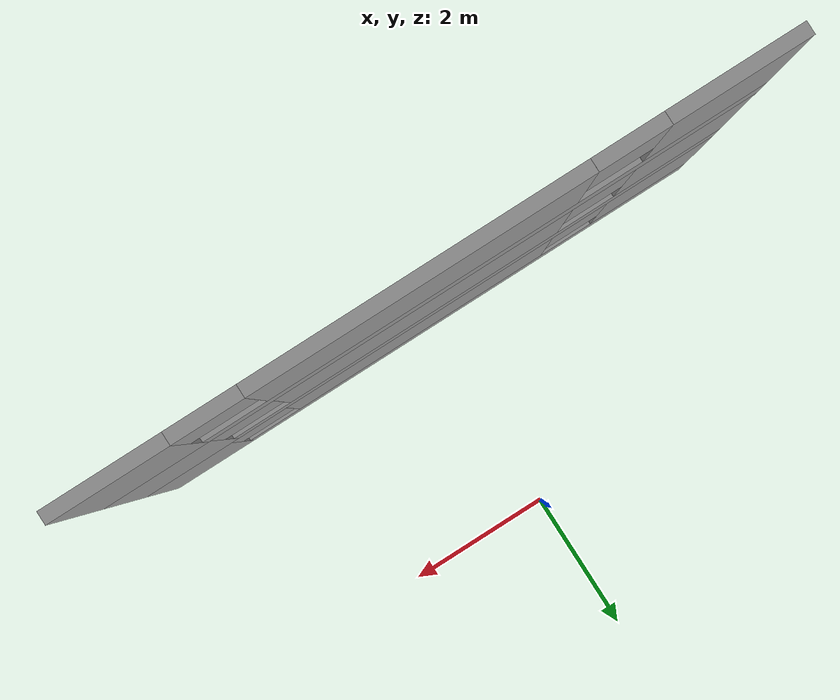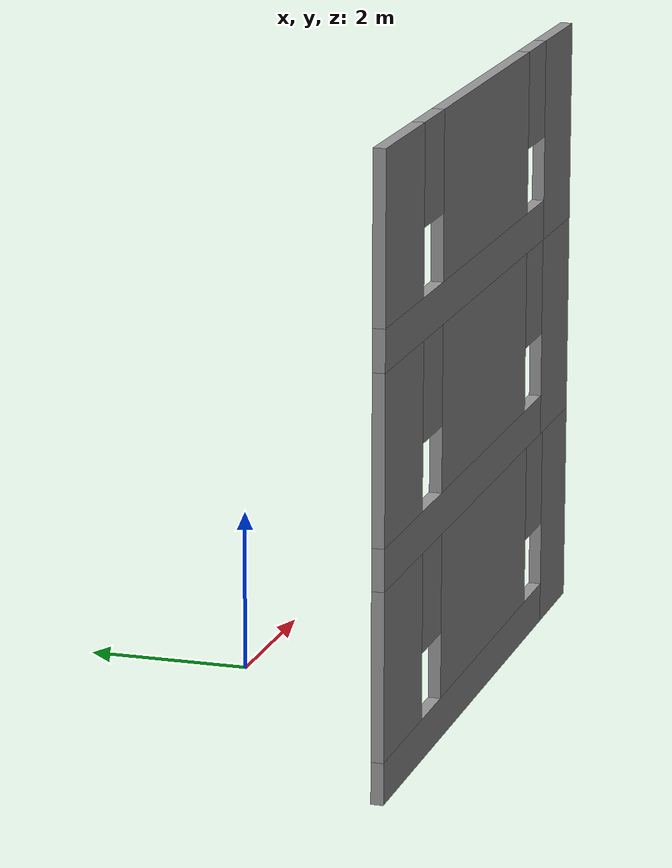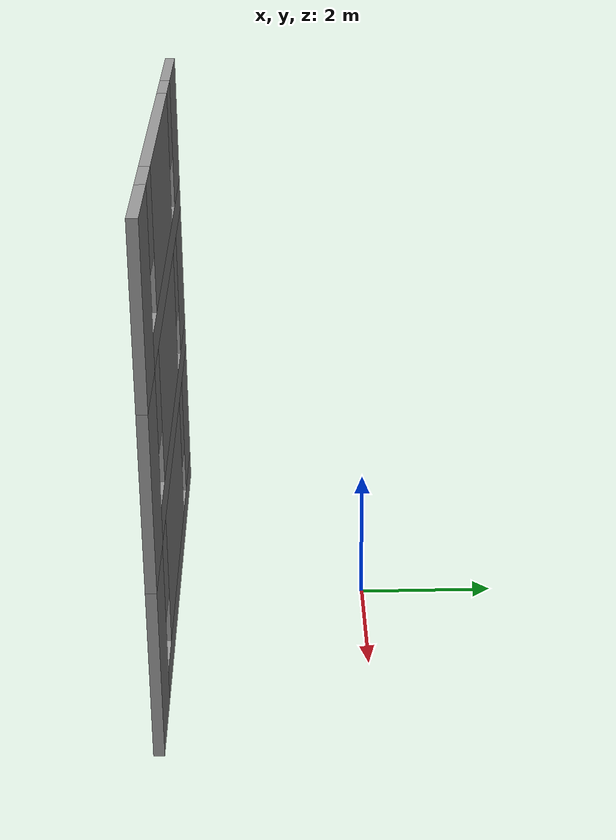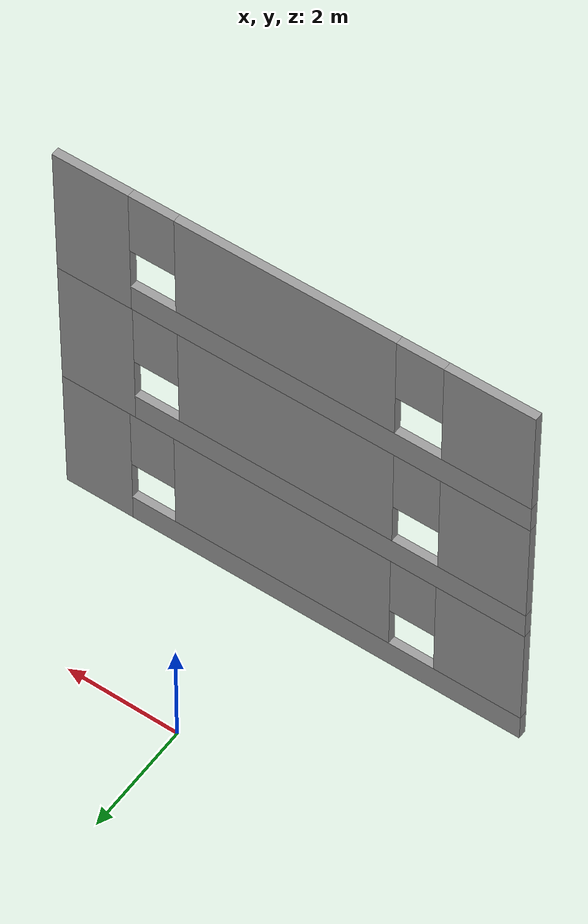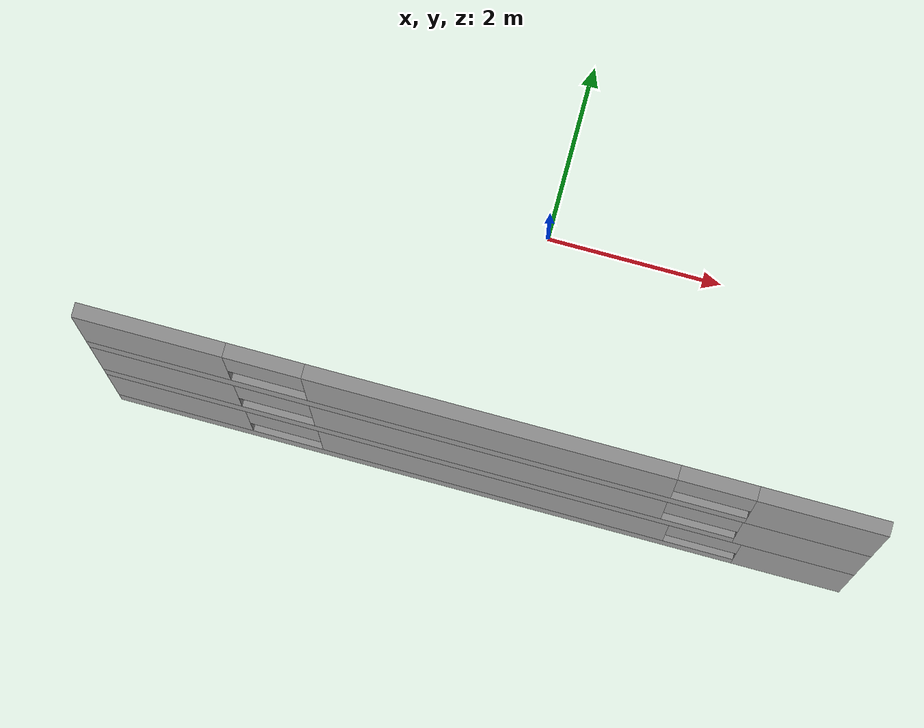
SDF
<sdf version="1.7">
 <model name="simple_building">
  <link name="Wall_20">
   <pose>0.008172 -2.91354 2.5 0 -0 3.14159</pose>
   <visual name="Wall_20_Visual_0">
    <pose>-3.46119 0 1.25 0 -0 0</pose>
    <geometry><box><size>1.35138 0.15 2.5</size></box></geometry>
    <material>
     <script><uri>file://media/materials/scripts/gazebo.material</uri><name>Gazebo/Grey</name></script>
     <ambient>1 1 1 1</ambient>
     <shader type="pixel"/>
    </material>
   </visual>
   <visual name="Wall_20_Visual_1">
    <pose>0.675691 0 0.25 0 -0 0</pose>
    <geometry><box><size>6.92237 0.15 0.5</size></box></geometry>
    <material>
     <script><uri>file://media/materials/scripts/gazebo.material</uri><name>Gazebo/Grey</name></script>
     <ambient>1 1 1 1</ambient>
     <shader type="pixel"/>
    </material>
   </visual>
   <visual name="Wall_20_Visual_2">
    <pose>-0.088975 0 1.5 0 -0 0</pose>
    <geometry><box><size>3.79304 0.15 2</size></box></geometry>
    <material>
     <script><uri>file://media/materials/scripts/gazebo.material</uri><name>Gazebo/Grey</name></script>
     <ambient>1 1 1 1</ambient>
     <shader type="pixel"/>
    </material>
   </visual>
   <visual name="Wall_20_Visual_3">
    <pose>3.37221 0 1.5 0 -0 0</pose>
    <geometry><box><size>1.52933 0.15 2</size></box></geometry>
    <material>
     <script><uri>file://media/materials/scripts/gazebo.material</uri><name>Gazebo/Grey</name></script>
     <ambient>1 1 1 1</ambient>
     <shader type="pixel"/>
    </material>
   </visual>
   <visual name="Wall_20_Visual_4">
    <pose>-2.3855 0 1.9 0 -0 0</pose>
    <geometry><box><size>0.8 0.15 1.2</size></box></geometry>
    <material>
     <script><uri>file://media/materials/scripts/gazebo.material</uri><name>Gazebo/Grey</name></script>
     <ambient>1 1 1 1</ambient>
     <shader type="pixel"/>
    </material>
   </visual>
   <visual name="Wall_20_Visual_5">
    <pose>2.20755 0 1.9 0 -0 0</pose>
    <geometry><box><size>0.8 0.15 1.2</size></box></geometry>
    <material>
     <script><uri>file://media/materials/scripts/gazebo.material</uri><name>Gazebo/Grey</name></script>
     <ambient>1 1 1 1</ambient>
     <shader type="pixel"/>
    </material>
   </visual>
   <collision name="Wall_20_Collision_0">
    <pose>-3.46119 0 1.25 0 -0 0</pose>
    <geometry><box><size>1.35138 0.15 2.5</size></box></geometry>
    <surface>
     <friction>
      <ode><mu>1</mu><mu2>1</mu2><fdir1>0 0 0</fdir1><slip1>0</slip1><slip2>0</slip2></ode>
      <torsional>
       <coefficient>1</coefficient>
       <patch_radius>0</patch_radius>
       <surface_radius>0</surface_radius>
       <use_patch_radius>1</use_patch_radius>
       <ode><slip>0</slip></ode>
      </torsional>
     </friction>
     <bounce><restitution_coefficient>0</restitution_coefficient><threshold>1e+06</threshold></bounce>
     <contact>
      <collide_without_contact>0</collide_without_contact>
      <collide_without_contact_bitmask>1</collide_without_contact_bitmask>
      <collide_bitmask>1</collide_bitmask>
      <ode>
       <soft_cfm>0</soft_cfm>
       <soft_erp>0.2</soft_erp>
       <kp>1e+13</kp>
       <kd>1</kd>
       <max_vel>0.01</max_vel>
       <min_depth>0</min_depth>
      </ode>
      <bullet>
       <split_impulse>1</split_impulse>
       <split_impulse_penetration_threshold>-0.01</split_impulse_penetration_threshold>
       <soft_cfm>0</soft_cfm>
       <soft_erp>0.2</soft_erp>
       <kp>1e+13</kp>
       <kd>1</kd>
      </bullet>
     </contact>
    </surface>
   </collision>
   <collision name="Wall_20_Collision_1">
    <pose>0.675691 0 0.25 0 -0 0</pose>
    <geometry><box><size>6.92237 0.15 0.5</size></box></geometry>
    <surface>
     <friction>
      <ode><mu>1</mu><mu2>1</mu2><fdir1>0 0 0</fdir1><slip1>0</slip1><slip2>0</slip2></ode>
      <torsional>
       <coefficient>1</coefficient>
       <patch_radius>0</patch_radius>
       <surface_radius>0</surface_radius>
       <use_patch_radius>1</use_patch_radius>
       <ode><slip>0</slip></ode>
      </torsional>
     </friction>
     <bounce><restitution_coefficient>0</restitution_coefficient><threshold>1e+06</threshold></bounce>
     <contact>
      <collide_without_contact>0</collide_without_contact>
      <collide_without_contact_bitmask>1</collide_without_contact_bitmask>
      <collide_bitmask>1</collide_bitmask>
      <ode>
       <soft_cfm>0</soft_cfm>
       <soft_erp>0.2</soft_erp>
       <kp>1e+13</kp>
       <kd>1</kd>
       <max_vel>0.01</max_vel>
       <min_depth>0</min_depth>
      </ode>
      <bullet>
       <split_impulse>1</split_impulse>
       <split_impulse_penetration_threshold>-0.01</split_impulse_penetration_threshold>
       <soft_cfm>0</soft_cfm>
       <soft_erp>0.2</soft_erp>
       <kp>1e+13</kp>
       <kd>1</kd>
      </bullet>
     </contact>
    </surface>
   </collision>
   <collision name="Wall_20_Collision_2">
    <pose>-0.088975 0 1.5 0 -0 0</pose>
    <geometry><box><size>3.79304 0.15 2</size></box></geometry>
    <surface>
     <friction>
      <ode><mu>1</mu><mu2>1</mu2><fdir1>0 0 0</fdir1><slip1>0</slip1><slip2>0</slip2></ode>
      <torsional>
       <coefficient>1</coefficient>
       <patch_radius>0</patch_radius>
       <surface_radius>0</surface_radius>
       <use_patch_radius>1</use_patch_radius>
       <ode><slip>0</slip></ode>
      </torsional>
     </friction>
     <bounce><restitution_coefficient>0</restitution_coefficient><threshold>1e+06</threshold></bounce>
     <contact>
      <collide_without_contact>0</collide_without_contact>
      <collide_without_contact_bitmask>1</collide_without_contact_bitmask>
      <collide_bitmask>1</collide_bitmask>
      <ode>
       <soft_cfm>0</soft_cfm>
       <soft_erp>0.2</soft_erp>
       <kp>1e+13</kp>
       <kd>1</kd>
       <max_vel>0.01</max_vel>
       <min_depth>0</min_depth>
      </ode>
      <bullet>
       <split_impulse>1</split_impulse>
       <split_impulse_penetration_threshold>-0.01</split_impulse_penetration_threshold>
       <soft_cfm>0</soft_cfm>
       <soft_erp>0.2</soft_erp>
       <kp>1e+13</kp>
       <kd>1</kd>
      </bullet>
     </contact>
    </surface>
   </collision>
   <collision name="Wall_20_Collision_3">
    <pose>3.37221 0 1.5 0 -0 0</pose>
    <geometry><box><size>1.52933 0.15 2</size></box></geometry>
    <surface>
     <friction>
      <ode><mu>1</mu><mu2>1</mu2><fdir1>0 0 0</fdir1><slip1>0</slip1><slip2>0</slip2></ode>
      <torsional>
       <coefficient>1</coefficient>
       <patch_radius>0</patch_radius>
       <surface_radius>0</surface_radius>
       <use_patch_radius>1</use_patch_radius>
       <ode><slip>0</slip></ode>
      </torsional>
     </friction>
     <bounce><restitution_coefficient>0</restitution_coefficient><threshold>1e+06</threshold></bounce>
     <contact>
      <collide_without_contact>0</collide_without_contact>
      <collide_without_contact_bitmask>1</collide_without_contact_bitmask>
      <collide_bitmask>1</collide_bitmask>
      <ode>
       <soft_cfm>0</soft_cfm>
       <soft_erp>0.2</soft_erp>
       <kp>1e+13</kp>
       <kd>1</kd>
       <max_vel>0.01</max_vel>
       <min_depth>0</min_depth>
      </ode>
      <bullet>
       <split_impulse>1</split_impulse>
       <split_impulse_penetration_threshold>-0.01</split_impulse_penetration_threshold>
       <soft_cfm>0</soft_cfm>
       <soft_erp>0.2</soft_erp>
       <kp>1e+13</kp>
       <kd>1</kd>
      </bullet>
     </contact>
    </surface>
   </collision>
   <collision name="Wall_20_Collision_4">
    <pose>-2.3855 0 1.9 0 -0 0</pose>
    <geometry><box><size>0.8 0.15 1.2</size></box></geometry>
    <surface>
     <friction>
      <ode><mu>1</mu><mu2>1</mu2><fdir1>0 0 0</fdir1><slip1>0</slip1><slip2>0</slip2></ode>
      <torsional>
       <coefficient>1</coefficient>
       <patch_radius>0</patch_radius>
       <surface_radius>0</surface_radius>
       <use_patch_radius>1</use_patch_radius>
       <ode><slip>0</slip></ode>
      </torsional>
     </friction>
     <bounce><restitution_coefficient>0</restitution_coefficient><threshold>1e+06</threshold></bounce>
     <contact>
      <collide_without_contact>0</collide_without_contact>
      <collide_without_contact_bitmask>1</collide_without_contact_bitmask>
      <collide_bitmask>1</collide_bitmask>
      <ode>
       <soft_cfm>0</soft_cfm>
       <soft_erp>0.2</soft_erp>
       <kp>1e+13</kp>
       <kd>1</kd>
       <max_vel>0.01</max_vel>
       <min_depth>0</min_depth>
      </ode>
      <bullet>
       <split_impulse>1</split_impulse>
       <split_impulse_penetration_threshold>-0.01</split_impulse_penetration_threshold>
       <soft_cfm>0</soft_cfm>
       <soft_erp>0.2</soft_erp>
       <kp>1e+13</kp>
       <kd>1</kd>
      </bullet>
     </contact>
    </surface>
   </collision>
   <collision name="Wall_20_Collision_5">
    <pose>2.20755 0 1.9 0 -0 0</pose>
    <geometry><box><size>0.8 0.15 1.2</size></box></geometry>
    <surface>
     <friction>
      <ode><mu>1</mu><mu2>1</mu2><fdir1>0 0 0</fdir1><slip1>0</slip1><slip2>0</slip2></ode>
      <torsional>
       <coefficient>1</coefficient>
       <patch_radius>0</patch_radius>
       <surface_radius>0</surface_radius>
       <use_patch_radius>1</use_patch_radius>
       <ode><slip>0</slip></ode>
      </torsional>
     </friction>
     <bounce><restitution_coefficient>0</restitution_coefficient><threshold>1e+06</threshold></bounce>
     <contact>
      <collide_without_contact>0</collide_without_contact>
      <collide_without_contact_bitmask>1</collide_without_contact_bitmask>
      <collide_bitmask>1</collide_bitmask>
      <ode>
       <soft_cfm>0</soft_cfm>
       <soft_erp>0.2</soft_erp>
       <kp>1e+13</kp>
       <kd>1</kd>
       <max_vel>0.01</max_vel>
       <min_depth>0</min_depth>
      </ode>
      <bullet>
       <split_impulse>1</split_impulse>
       <split_impulse_penetration_threshold>-0.01</split_impulse_penetration_threshold>
       <soft_cfm>0</soft_cfm>
       <soft_erp>0.2</soft_erp>
       <kp>1e+13</kp>
       <kd>1</kd>
      </bullet>
     </contact>
    </surface>
   </collision>
  </link>
  <link name="Wall_25">
   <pose>0.008172 -2.91354 5 0 -0 3.14159</pose>
   <visual name="Wall_25_Visual_0">
    <pose>-3.46879 0 1.25 0 -0 0</pose>
    <geometry><box><size>1.33617 0.15 2.5</size></box></geometry>
    <material>
     <script><uri>file://media/materials/scripts/gazebo.material</uri><name>Gazebo/Grey</name></script>
     <ambient>1 1 1 1</ambient>
     <shader type="pixel"/>
    </material>
   </visual>
   <visual name="Wall_25_Visual_1">
    <pose>0.668087 0 0.25 0 -0 0</pose>
    <geometry><box><size>6.93758 0.15 0.5</size></box></geometry>
    <material>
     <script><uri>file://media/materials/scripts/gazebo.material</uri><name>Gazebo/Grey</name></script>
     <ambient>1 1 1 1</ambient>
     <shader type="pixel"/>
    </material>
   </visual>
   <visual name="Wall_25_Visual_2">
    <pose>-0.096579 0 1.5 0 -0 0</pose>
    <geometry><box><size>3.80825 0.15 2</size></box></geometry>
    <material>
     <script><uri>file://media/materials/scripts/gazebo.material</uri><name>Gazebo/Grey</name></script>
     <ambient>1 1 1 1</ambient>
     <shader type="pixel"/>
    </material>
   </visual>
   <visual name="Wall_25_Visual_3">
    <pose>3.37221 0 1.5 0 -0 0</pose>
    <geometry><box><size>1.52933 0.15 2</size></box></geometry>
    <material>
     <script><uri>file://media/materials/scripts/gazebo.material</uri><name>Gazebo/Grey</name></script>
     <ambient>1 1 1 1</ambient>
     <shader type="pixel"/>
    </material>
   </visual>
   <visual name="Wall_25_Visual_4">
    <pose>-2.4007 0 1.9 0 -0 0</pose>
    <geometry><box><size>0.8 0.15 1.2</size></box></geometry>
    <material>
     <script><uri>file://media/materials/scripts/gazebo.material</uri><name>Gazebo/Grey</name></script>
     <ambient>1 1 1 1</ambient>
     <shader type="pixel"/>
    </material>
   </visual>
   <visual name="Wall_25_Visual_5">
    <pose>2.20755 0 1.9 0 -0 0</pose>
    <geometry><box><size>0.8 0.15 1.2</size></box></geometry>
    <material>
     <script><uri>file://media/materials/scripts/gazebo.material</uri><name>Gazebo/Grey</name></script>
     <ambient>1 1 1 1</ambient>
     <shader type="pixel"/>
    </material>
   </visual>
   <collision name="Wall_25_Collision_0">
    <pose>-3.46879 0 1.25 0 -0 0</pose>
    <geometry><box><size>1.33617 0.15 2.5</size></box></geometry>
    <surface>
     <friction>
      <ode><mu>1</mu><mu2>1</mu2><fdir1>0 0 0</fdir1><slip1>0</slip1><slip2>0</slip2></ode>
      <torsional>
       <coefficient>1</coefficient>
       <patch_radius>0</patch_radius>
       <surface_radius>0</surface_radius>
       <use_patch_radius>1</use_patch_radius>
       <ode><slip>0</slip></ode>
      </torsional>
     </friction>
     <bounce><restitution_coefficient>0</restitution_coefficient><threshold>1e+06</threshold></bounce>
     <contact>
      <collide_without_contact>0</collide_without_contact>
      <collide_without_contact_bitmask>1</collide_without_contact_bitmask>
      <collide_bitmask>1</collide_bitmask>
      <ode>
       <soft_cfm>0</soft_cfm>
       <soft_erp>0.2</soft_erp>
       <kp>1e+13</kp>
       <kd>1</kd>
       <max_vel>0.01</max_vel>
       <min_depth>0</min_depth>
      </ode>
      <bullet>
       <split_impulse>1</split_impulse>
       <split_impulse_penetration_threshold>-0.01</split_impulse_penetration_threshold>
       <soft_cfm>0</soft_cfm>
       <soft_erp>0.2</soft_erp>
       <kp>1e+13</kp>
       <kd>1</kd>
      </bullet>
     </contact>
    </surface>
   </collision>
   <collision name="Wall_25_Collision_1">
    <pose>0.668087 0 0.25 0 -0 0</pose>
    <geometry><box><size>6.93758 0.15 0.5</size></box></geometry>
    <surface>
     <friction>
      <ode><mu>1</mu><mu2>1</mu2><fdir1>0 0 0</fdir1><slip1>0</slip1><slip2>0</slip2></ode>
      <torsional>
       <coefficient>1</coefficient>
       <patch_radius>0</patch_radius>
       <surface_radius>0</surface_radius>
       <use_patch_radius>1</use_patch_radius>
       <ode><slip>0</slip></ode>
      </torsional>
     </friction>
     <bounce><restitution_coefficient>0</restitution_coefficient><threshold>1e+06</threshold></bounce>
     <contact>
      <collide_without_contact>0</collide_without_contact>
      <collide_without_contact_bitmask>1</collide_without_contact_bitmask>
      <collide_bitmask>1</collide_bitmask>
      <ode>
       <soft_cfm>0</soft_cfm>
       <soft_erp>0.2</soft_erp>
       <kp>1e+13</kp>
       <kd>1</kd>
       <max_vel>0.01</max_vel>
       <min_depth>0</min_depth>
      </ode>
      <bullet>
       <split_impulse>1</split_impulse>
       <split_impulse_penetration_threshold>-0.01</split_impulse_penetration_threshold>
       <soft_cfm>0</soft_cfm>
       <soft_erp>0.2</soft_erp>
       <kp>1e+13</kp>
       <kd>1</kd>
      </bullet>
     </contact>
    </surface>
   </collision>
   <collision name="Wall_25_Collision_2">
    <pose>-0.096579 0 1.5 0 -0 0</pose>
    <geometry><box><size>3.80825 0.15 2</size></box></geometry>
    <surface>
     <friction>
      <ode><mu>1</mu><mu2>1</mu2><fdir1>0 0 0</fdir1><slip1>0</slip1><slip2>0</slip2></ode>
      <torsional>
       <coefficient>1</coefficient>
       <patch_radius>0</patch_radius>
       <surface_radius>0</surface_radius>
       <use_patch_radius>1</use_patch_radius>
       <ode><slip>0</slip></ode>
      </torsional>
     </friction>
     <bounce><restitution_coefficient>0</restitution_coefficient><threshold>1e+06</threshold></bounce>
     <contact>
      <collide_without_contact>0</collide_without_contact>
      <collide_without_contact_bitmask>1</collide_without_contact_bitmask>
      <collide_bitmask>1</collide_bitmask>
      <ode>
       <soft_cfm>0</soft_cfm>
       <soft_erp>0.2</soft_erp>
       <kp>1e+13</kp>
       <kd>1</kd>
       <max_vel>0.01</max_vel>
       <min_depth>0</min_depth>
      </ode>
      <bullet>
       <split_impulse>1</split_impulse>
       <split_impulse_penetration_threshold>-0.01</split_impulse_penetration_threshold>
       <soft_cfm>0</soft_cfm>
       <soft_erp>0.2</soft_erp>
       <kp>1e+13</kp>
       <kd>1</kd>
      </bullet>
     </contact>
    </surface>
   </collision>
   <collision name="Wall_25_Collision_3">
    <pose>3.37221 0 1.5 0 -0 0</pose>
    <geometry><box><size>1.52933 0.15 2</size></box></geometry>
    <surface>
     <friction>
      <ode><mu>1</mu><mu2>1</mu2><fdir1>0 0 0</fdir1><slip1>0</slip1><slip2>0</slip2></ode>
      <torsional>
       <coefficient>1</coefficient>
       <patch_radius>0</patch_radius>
       <surface_radius>0</surface_radius>
       <use_patch_radius>1</use_patch_radius>
       <ode><slip>0</slip></ode>
      </torsional>
     </friction>
     <bounce><restitution_coefficient>0</restitution_coefficient><threshold>1e+06</threshold></bounce>
     <contact>
      <collide_without_contact>0</collide_without_contact>
      <collide_without_contact_bitmask>1</collide_without_contact_bitmask>
      <collide_bitmask>1</collide_bitmask>
      <ode>
       <soft_cfm>0</soft_cfm>
       <soft_erp>0.2</soft_erp>
       <kp>1e+13</kp>
       <kd>1</kd>
       <max_vel>0.01</max_vel>
       <min_depth>0</min_depth>
      </ode>
      <bullet>
       <split_impulse>1</split_impulse>
       <split_impulse_penetration_threshold>-0.01</split_impulse_penetration_threshold>
       <soft_cfm>0</soft_cfm>
       <soft_erp>0.2</soft_erp>
       <kp>1e+13</kp>
       <kd>1</kd>
      </bullet>
     </contact>
    </surface>
   </collision>
   <collision name="Wall_25_Collision_4">
    <pose>-2.4007 0 1.9 0 -0 0</pose>
    <geometry><box><size>0.8 0.15 1.2</size></box></geometry>
    <surface>
     <friction>
      <ode><mu>1</mu><mu2>1</mu2><fdir1>0 0 0</fdir1><slip1>0</slip1><slip2>0</slip2></ode>
      <torsional>
       <coefficient>1</coefficient>
       <patch_radius>0</patch_radius>
       <surface_radius>0</surface_radius>
       <use_patch_radius>1</use_patch_radius>
       <ode><slip>0</slip></ode>
      </torsional>
     </friction>
     <bounce><restitution_coefficient>0</restitution_coefficient><threshold>1e+06</threshold></bounce>
     <contact>
      <collide_without_contact>0</collide_without_contact>
      <collide_without_contact_bitmask>1</collide_without_contact_bitmask>
      <collide_bitmask>1</collide_bitmask>
      <ode>
       <soft_cfm>0</soft_cfm>
       <soft_erp>0.2</soft_erp>
       <kp>1e+13</kp>
       <kd>1</kd>
       <max_vel>0.01</max_vel>
       <min_depth>0</min_depth>
      </ode>
      <bullet>
       <split_impulse>1</split_impulse>
       <split_impulse_penetration_threshold>-0.01</split_impulse_penetration_threshold>
       <soft_cfm>0</soft_cfm>
       <soft_erp>0.2</soft_erp>
       <kp>1e+13</kp>
       <kd>1</kd>
      </bullet>
     </contact>
    </surface>
   </collision>
   <collision name="Wall_25_Collision_5">
    <pose>2.20755 0 1.9 0 -0 0</pose>
    <geometry><box><size>0.8 0.15 1.2</size></box></geometry>
    <surface>
     <friction>
      <ode><mu>1</mu><mu2>1</mu2><fdir1>0 0 0</fdir1><slip1>0</slip1><slip2>0</slip2></ode>
      <torsional>
       <coefficient>1</coefficient>
       <patch_radius>0</patch_radius>
       <surface_radius>0</surface_radius>
       <use_patch_radius>1</use_patch_radius>
       <ode><slip>0</slip></ode>
      </torsional>
     </friction>
     <bounce><restitution_coefficient>0</restitution_coefficient><threshold>1e+06</threshold></bounce>
     <contact>
      <collide_without_contact>0</collide_without_contact>
      <collide_without_contact_bitmask>1</collide_without_contact_bitmask>
      <collide_bitmask>1</collide_bitmask>
      <ode>
       <soft_cfm>0</soft_cfm>
       <soft_erp>0.2</soft_erp>
       <kp>1e+13</kp>
       <kd>1</kd>
       <max_vel>0.01</max_vel>
       <min_depth>0</min_depth>
      </ode>
      <bullet>
       <split_impulse>1</split_impulse>
       <split_impulse_penetration_threshold>-0.01</split_impulse_penetration_threshold>
       <soft_cfm>0</soft_cfm>
       <soft_erp>0.2</soft_erp>
       <kp>1e+13</kp>
       <kd>1</kd>
      </bullet>
     </contact>
    </surface>
   </collision>
  </link>
  <link name="Wall_4">
   <pose>0.008172 -2.91354 0 0 -0 3.14159</pose>
   <visual name="Wall_4_Visual_0">
    <pose>-3.51442 0 1.25 0 -0 0</pose>
    <geometry><box><size>1.24492 0.15 2.5</size></box></geometry>
    <material>
     <script><uri>file://media/materials/scripts/gazebo.material</uri><name>Gazebo/Grey</name></script>
     <ambient>1 1 1 1</ambient>
     <shader type="pixel"/>
    </material>
   </visual>
   <visual name="Wall_4_Visual_1">
    <pose>0.622461 0 0.25 0 -0 0</pose>
    <geometry><box><size>7.02884 0.15 0.5</size></box></geometry>
    <material>
     <script><uri>file://media/materials/scripts/gazebo.material</uri><name>Gazebo/Grey</name></script>
     <ambient>1 1 1 1</ambient>
     <shader type="pixel"/>
    </material>
   </visual>
   <visual name="Wall_4_Visual_2">
    <pose>-0.14981 0 1.5 0 -0 0</pose>
    <geometry><box><size>3.88429 0.15 2</size></box></geometry>
    <material>
     <script><uri>file://media/materials/scripts/gazebo.material</uri><name>Gazebo/Grey</name></script>
     <ambient>1 1 1 1</ambient>
     <shader type="pixel"/>
    </material>
   </visual>
   <visual name="Wall_4_Visual_3">
    <pose>3.36461 0 1.5 0 -0 0</pose>
    <geometry><box><size>1.54454 0.15 2</size></box></geometry>
    <material>
     <script><uri>file://media/materials/scripts/gazebo.material</uri><name>Gazebo/Grey</name></script>
     <ambient>1 1 1 1</ambient>
     <shader type="pixel"/>
    </material>
   </visual>
   <visual name="Wall_4_Visual_4">
    <pose>-2.49196 0 1.9 0 -0 0</pose>
    <geometry><box><size>0.8 0.15 1.2</size></box></geometry>
    <material>
     <script><uri>file://media/materials/scripts/gazebo.material</uri><name>Gazebo/Grey</name></script>
     <ambient>1 1 1 1</ambient>
     <shader type="pixel"/>
    </material>
   </visual>
   <visual name="Wall_4_Visual_5">
    <pose>2.19234 0 1.9 0 -0 0</pose>
    <geometry><box><size>0.8 0.15 1.2</size></box></geometry>
    <material>
     <script><uri>file://media/materials/scripts/gazebo.material</uri><name>Gazebo/Grey</name></script>
     <ambient>1 1 1 1</ambient>
     <shader type="pixel"/>
    </material>
   </visual>
   <collision name="Wall_4_Collision_0">
    <pose>-3.51442 0 1.25 0 -0 0</pose>
    <geometry><box><size>1.24492 0.15 2.5</size></box></geometry>
    <surface>
     <friction>
      <ode><mu>1</mu><mu2>1</mu2><fdir1>0 0 0</fdir1><slip1>0</slip1><slip2>0</slip2></ode>
      <torsional>
       <coefficient>1</coefficient>
       <patch_radius>0</patch_radius>
       <surface_radius>0</surface_radius>
       <use_patch_radius>1</use_patch_radius>
       <ode><slip>0</slip></ode>
      </torsional>
     </friction>
     <bounce><restitution_coefficient>0</restitution_coefficient><threshold>1e+06</threshold></bounce>
     <contact>
      <collide_without_contact>0</collide_without_contact>
      <collide_without_contact_bitmask>1</collide_without_contact_bitmask>
      <collide_bitmask>1</collide_bitmask>
      <ode>
       <soft_cfm>0</soft_cfm>
       <soft_erp>0.2</soft_erp>
       <kp>1e+13</kp>
       <kd>1</kd>
       <max_vel>0.01</max_vel>
       <min_depth>0</min_depth>
      </ode>
      <bullet>
       <split_impulse>1</split_impulse>
       <split_impulse_penetration_threshold>-0.01</split_impulse_penetration_threshold>
       <soft_cfm>0</soft_cfm>
       <soft_erp>0.2</soft_erp>
       <kp>1e+13</kp>
       <kd>1</kd>
      </bullet>
     </contact>
    </surface>
   </collision>
   <collision name="Wall_4_Collision_1">
    <pose>0.622461 0 0.25 0 -0 0</pose>
    <geometry><box><size>7.02884 0.15 0.5</size></box></geometry>
    <surface>
     <friction>
      <ode><mu>1</mu><mu2>1</mu2><fdir1>0 0 0</fdir1><slip1>0</slip1><slip2>0</slip2></ode>
      <torsional>
       <coefficient>1</coefficient>
       <patch_radius>0</patch_radius>
       <surface_radius>0</surface_radius>
       <use_patch_radius>1</use_patch_radius>
       <ode><slip>0</slip></ode>
      </torsional>
     </friction>
     <bounce><restitution_coefficient>0</restitution_coefficient><threshold>1e+06</threshold></bounce>
     <contact>
      <collide_without_contact>0</collide_without_contact>
      <collide_without_contact_bitmask>1</collide_without_contact_bitmask>
      <collide_bitmask>1</collide_bitmask>
      <ode>
       <soft_cfm>0</soft_cfm>
       <soft_erp>0.2</soft_erp>
       <kp>1e+13</kp>
       <kd>1</kd>
       <max_vel>0.01</max_vel>
       <min_depth>0</min_depth>
      </ode>
      <bullet>
       <split_impulse>1</split_impulse>
       <split_impulse_penetration_threshold>-0.01</split_impulse_penetration_threshold>
       <soft_cfm>0</soft_cfm>
       <soft_erp>0.2</soft_erp>
       <kp>1e+13</kp>
       <kd>1</kd>
      </bullet>
     </contact>
    </surface>
   </collision>
   <collision name="Wall_4_Collision_2">
    <pose>-0.14981 0 1.5 0 -0 0</pose>
    <geometry><box><size>3.88429 0.15 2</size></box></geometry>
    <surface>
     <friction>
      <ode><mu>1</mu><mu2>1</mu2><fdir1>0 0 0</fdir1><slip1>0</slip1><slip2>0</slip2></ode>
      <torsional>
       <coefficient>1</coefficient>
       <patch_radius>0</patch_radius>
       <surface_radius>0</surface_radius>
       <use_patch_radius>1</use_patch_radius>
       <ode><slip>0</slip></ode>
      </torsional>
     </friction>
     <bounce><restitution_coefficient>0</restitution_coefficient><threshold>1e+06</threshold></bounce>
     <contact>
      <collide_without_contact>0</collide_without_contact>
      <collide_without_contact_bitmask>1</collide_without_contact_bitmask>
      <collide_bitmask>1</collide_bitmask>
      <ode>
       <soft_cfm>0</soft_cfm>
       <soft_erp>0.2</soft_erp>
       <kp>1e+13</kp>
       <kd>1</kd>
       <max_vel>0.01</max_vel>
       <min_depth>0</min_depth>
      </ode>
      <bullet>
       <split_impulse>1</split_impulse>
       <split_impulse_penetration_threshold>-0.01</split_impulse_penetration_threshold>
       <soft_cfm>0</soft_cfm>
       <soft_erp>0.2</soft_erp>
       <kp>1e+13</kp>
       <kd>1</kd>
      </bullet>
     </contact>
    </surface>
   </collision>
   <collision name="Wall_4_Collision_3">
    <pose>3.36461 0 1.5 0 -0 0</pose>
    <geometry><box><size>1.54454 0.15 2</size></box></geometry>
    <surface>
     <friction>
      <ode><mu>1</mu><mu2>1</mu2><fdir1>0 0 0</fdir1><slip1>0</slip1><slip2>0</slip2></ode>
      <torsional>
       <coefficient>1</coefficient>
       <patch_radius>0</patch_radius>
       <surface_radius>0</surface_radius>
       <use_patch_radius>1</use_patch_radius>
       <ode><slip>0</slip></ode>
      </torsional>
     </friction>
     <bounce><restitution_coefficient>0</restitution_coefficient><threshold>1e+06</threshold></bounce>
     <contact>
      <collide_without_contact>0</collide_without_contact>
      <collide_without_contact_bitmask>1</collide_without_contact_bitmask>
      <collide_bitmask>1</collide_bitmask>
      <ode>
       <soft_cfm>0</soft_cfm>
       <soft_erp>0.2</soft_erp>
       <kp>1e+13</kp>
       <kd>1</kd>
       <max_vel>0.01</max_vel>
       <min_depth>0</min_depth>
      </ode>
      <bullet>
       <split_impulse>1</split_impulse>
       <split_impulse_penetration_threshold>-0.01</split_impulse_penetration_threshold>
       <soft_cfm>0</soft_cfm>
       <soft_erp>0.2</soft_erp>
       <kp>1e+13</kp>
       <kd>1</kd>
      </bullet>
     </contact>
    </surface>
   </collision>
   <collision name="Wall_4_Collision_4">
    <pose>-2.49196 0 1.9 0 -0 0</pose>
    <geometry><box><size>0.8 0.15 1.2</size></box></geometry>
    <surface>
     <friction>
      <ode><mu>1</mu><mu2>1</mu2><fdir1>0 0 0</fdir1><slip1>0</slip1><slip2>0</slip2></ode>
      <torsional>
       <coefficient>1</coefficient>
       <patch_radius>0</patch_radius>
       <surface_radius>0</surface_radius>
       <use_patch_radius>1</use_patch_radius>
       <ode><slip>0</slip></ode>
      </torsional>
     </friction>
     <bounce><restitution_coefficient>0</restitution_coefficient><threshold>1e+06</threshold></bounce>
     <contact>
      <collide_without_contact>0</collide_without_contact>
      <collide_without_contact_bitmask>1</collide_without_contact_bitmask>
      <collide_bitmask>1</collide_bitmask>
      <ode>
       <soft_cfm>0</soft_cfm>
       <soft_erp>0.2</soft_erp>
       <kp>1e+13</kp>
       <kd>1</kd>
       <max_vel>0.01</max_vel>
       <min_depth>0</min_depth>
      </ode>
      <bullet>
       <split_impulse>1</split_impulse>
       <split_impulse_penetration_threshold>-0.01</split_impulse_penetration_threshold>
       <soft_cfm>0</soft_cfm>
       <soft_erp>0.2</soft_erp>
       <kp>1e+13</kp>
       <kd>1</kd>
      </bullet>
     </contact>
    </surface>
   </collision>
   <collision name="Wall_4_Collision_5">
    <pose>2.19234 0 1.9 0 -0 0</pose>
    <geometry><box><size>0.8 0.15 1.2</size></box></geometry>
    <surface>
     <friction>
      <ode><mu>1</mu><mu2>1</mu2><fdir1>0 0 0</fdir1><slip1>0</slip1><slip2>0</slip2></ode>
      <torsional>
       <coefficient>1</coefficient>
       <patch_radius>0</patch_radius>
       <surface_radius>0</surface_radius>
       <use_patch_radius>1</use_patch_radius>
       <ode><slip>0</slip></ode>
      </torsional>
     </friction>
     <bounce><restitution_coefficient>0</restitution_coefficient><threshold>1e+06</threshold></bounce>
     <contact>
      <collide_without_contact>0</collide_without_contact>
      <collide_without_contact_bitmask>1</collide_without_contact_bitmask>
      <collide_bitmask>1</collide_bitmask>
      <ode>
       <soft_cfm>0</soft_cfm>
       <soft_erp>0.2</soft_erp>
       <kp>1e+13</kp>
       <kd>1</kd>
       <max_vel>0.01</max_vel>
       <min_depth>0</min_depth>
      </ode>
      <bullet>
       <split_impulse>1</split_impulse>
       <split_impulse_penetration_threshold>-0.01</split_impulse_penetration_threshold>
       <soft_cfm>0</soft_cfm>
       <soft_erp>0.2</soft_erp>
       <kp>1e+13</kp>
       <kd>1</kd>
      </bullet>
     </contact>
    </surface>
   </collision>
  </link>
  <static>1</static>
 </model>
</sdf>
